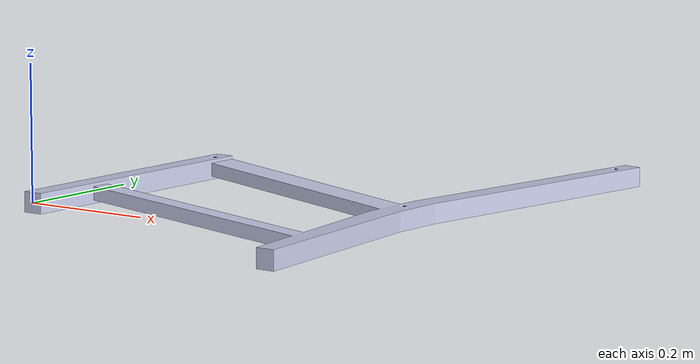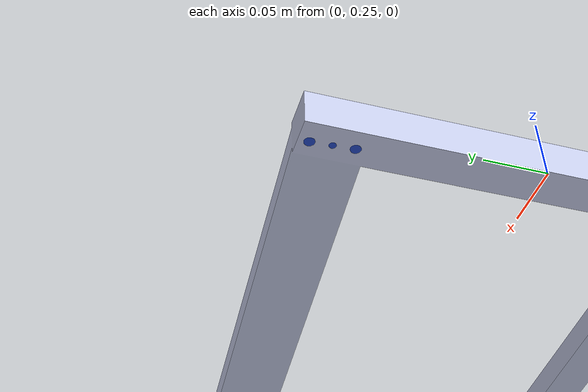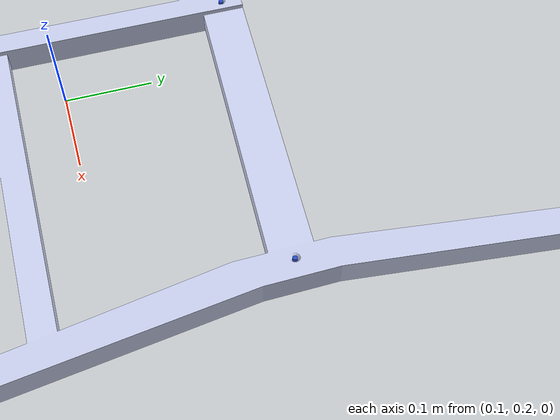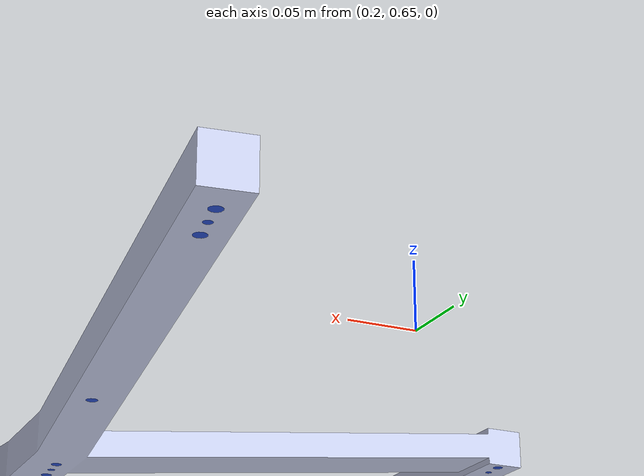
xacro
<?xml version="1.0" encoding="utf-8"?>
<robot name="part6.SLDPRT" xmlns:xacro="http://www.ros.org/wiki/xacro">

	<link name="part6.SLDPRT">
		<inertial>
			<origin xyz="0.25066 0.35103 -0.023978" rpy="0 0 0"></origin>
			<mass value="1.8121"></mass>
			<inertia ixx="0.085485" ixy="0.028258" ixz="-0.0047463" iyy="0.051765" iyz="-0.0023711" izz="0.13613"></inertia>
		</inertial>
		<visual>
			<origin xyz="0 0 0" rpy="0 0 0"></origin>
			<geometry>
				<mesh filename="package://object_description/urdfs/part6.SLDPRT/meshes/part6.SLDPRT.STL"></mesh>
			</geometry>
			<material name="">
				<color rgba="0.79216 0.81961 0.93333 1"></color>
			</material>
		</visual>
		<collision>
			<origin xyz="0 0 0" rpy="0 0 0"></origin>
			<geometry>
				<mesh filename="package://object_description/urdfs/part6.SLDPRT/meshes/part6.SLDPRT.STL"></mesh>
			</geometry>
		</collision>
	</link>
	<link name="part6 hole blocked 1">
		<visual>
			<origin xyz="0 0 0" rpy="0 0 0"></origin>
			<geometry>
				<cylinder length="0.01" radius="0.004"></cylinder>
			</geometry>
		</visual>
	</link>
	<link name="part6 hole opened 2">
		<visual>
			<origin xyz="0 0 0" rpy="0 0 0"></origin>
			<geometry>
				<cylinder length="0.03" radius="0.00275"></cylinder>
			</geometry>
		</visual>
	</link>
	<link name="part6 hole blocked 3">
		<visual>
			<origin xyz="0 0 0" rpy="0 0 0"></origin>
			<geometry>
				<cylinder length="0.01" radius="0.004"></cylinder>
			</geometry>
		</visual>
	</link>
	<link name="part6 hole blocked 4">
		<visual>
			<origin xyz="0 0 0" rpy="0 0 0"></origin>
			<geometry>
				<cylinder length="0.01" radius="0.004"></cylinder>
			</geometry>
		</visual>
	</link>
	<link name="part6 hole opened 5">
		<visual>
			<origin xyz="0 0 0" rpy="0 0 0"></origin>
			<geometry>
				<cylinder length="0.03" radius="0.00275"></cylinder>
			</geometry>
		</visual>
	</link>
	<link name="part6 hole blocked 6">
		<visual>
			<origin xyz="0 0 0" rpy="0 0 0"></origin>
			<geometry>
				<cylinder length="0.01" radius="0.004"></cylinder>
			</geometry>
		</visual>
	</link>
	<link name="part6 hole blocked 7">
		<visual>
			<origin xyz="0 0 0" rpy="0 0 0"></origin>
			<geometry>
				<cylinder length="0.015" radius="0.004"></cylinder>
			</geometry>
		</visual>
	</link>
	<link name="part6 hole blocked 8">
		<visual>
			<origin xyz="0 0 0" rpy="0 0 0"></origin>
			<geometry>
				<cylinder length="0.015" radius="0.004"></cylinder>
			</geometry>
		</visual>
	</link>
	<link name="part6 hole opened 9">
		<visual>
			<origin xyz="0 0 0" rpy="0 0 0"></origin>
			<geometry>
				<cylinder length="0.03" radius="0.00275"></cylinder>
			</geometry>
		</visual>
	</link>
	<link name="part6 hole blocked 10">
		<visual>
			<origin xyz="0 0 0" rpy="0 0 0"></origin>
			<geometry>
				<cylinder length="0.015" radius="0.004"></cylinder>
			</geometry>
		</visual>
	</link>
	<joint name="part6 hole blocked 1 joint" type="fixed">
		<origin xyz="0.00049 0.3947 -0.01" rpy="0.0 0.0 0.0"></origin>
		<parent link="part6.SLDPRT"></parent>
		<child link="part6 hole blocked 1"></child>
	</joint>
	<joint name="part6 hole opened 2 joint" type="fixed">
		<origin xyz="0.00133 0.41068 0.0" rpy="0.0 3.14159265359 0.0"></origin>
		<parent link="part6.SLDPRT"></parent>
		<child link="part6 hole opened 2"></child>
	</joint>
	<joint name="part6 hole blocked 3 joint" type="fixed">
		<origin xyz="0.00217 0.42666 -0.01" rpy="0.0 0.0 0.0"></origin>
		<parent link="part6.SLDPRT"></parent>
		<child link="part6 hole blocked 3"></child>
	</joint>
	<joint name="part6 hole blocked 4 joint" type="fixed">
		<origin xyz="0.36737 0.37548 -0.045" rpy="0.0 0.0 0.0"></origin>
		<parent link="part6.SLDPRT"></parent>
		<child link="part6 hole blocked 4"></child>
	</joint>
	<joint name="part6 hole opened 5 joint" type="fixed">
		<origin xyz="0.36821 0.39146 -0.035" rpy="0.0 3.14159265359 0.0"></origin>
		<parent link="part6.SLDPRT"></parent>
		<child link="part6 hole opened 5"></child>
	</joint>
	<joint name="part6 hole blocked 6 joint" type="fixed">
		<origin xyz="0.36904 0.40743 -0.045" rpy="0.0 0.0 0.0"></origin>
		<parent link="part6.SLDPRT"></parent>
		<child link="part6 hole blocked 6"></child>
	</joint>
	<joint name="part6 hole blocked 7 joint" type="fixed">
		<origin xyz="0.39324 0.56739 -0.0425" rpy="0.0 0.0 0.0"></origin>
		<parent link="part6.SLDPRT"></parent>
		<child link="part6 hole blocked 7"></child>
	</joint>
	<joint name="part6 hole blocked 8 joint" type="fixed">
		<origin xyz="0.42712 0.84437 -0.0425" rpy="0.0 0.0 0.0"></origin>
		<parent link="part6.SLDPRT"></parent>
		<child link="part6 hole blocked 8"></child>
	</joint>
	<joint name="part6 hole opened 9 joint" type="fixed">
		<origin xyz="0.42935 0.86022 -0.035" rpy="0.0 3.14159265359 0.0"></origin>
		<parent link="part6.SLDPRT"></parent>
		<child link="part6 hole opened 9"></child>
	</joint>
	<joint name="part6 hole blocked 10 joint" type="fixed">
		<origin xyz="0.43158 0.87606 -0.0425" rpy="0.0 0.0 0.0"></origin>
		<parent link="part6.SLDPRT"></parent>
		<child link="part6 hole blocked 10"></child>
	</joint>
	<gazebo reference="part6 hole blocked 1">
		<material>Gazebo/BlueTransparent</material>
	</gazebo>
	<gazebo reference="part6 hole opened 2">
		<material>Gazebo/BlueTransparent</material>
	</gazebo>
	<gazebo reference="part6 hole blocked 3">
		<material>Gazebo/BlueTransparent</material>
	</gazebo>
	<gazebo reference="part6 hole blocked 4">
		<material>Gazebo/BlueTransparent</material>
	</gazebo>
	<gazebo reference="part6 hole opened 5">
		<material>Gazebo/BlueTransparent</material>
	</gazebo>
	<gazebo reference="part6 hole blocked 6">
		<material>Gazebo/BlueTransparent</material>
	</gazebo>
	<gazebo reference="part6 hole blocked 7">
		<material>Gazebo/BlueTransparent</material>
	</gazebo>
	<gazebo reference="part6 hole blocked 8">
		<material>Gazebo/BlueTransparent</material>
	</gazebo>
	<gazebo reference="part6 hole opened 9">
		<material>Gazebo/BlueTransparent</material>
	</gazebo>
	<gazebo reference="part6 hole blocked 10">
		<material>Gazebo/BlueTransparent</material>
	</gazebo>
</robot>
